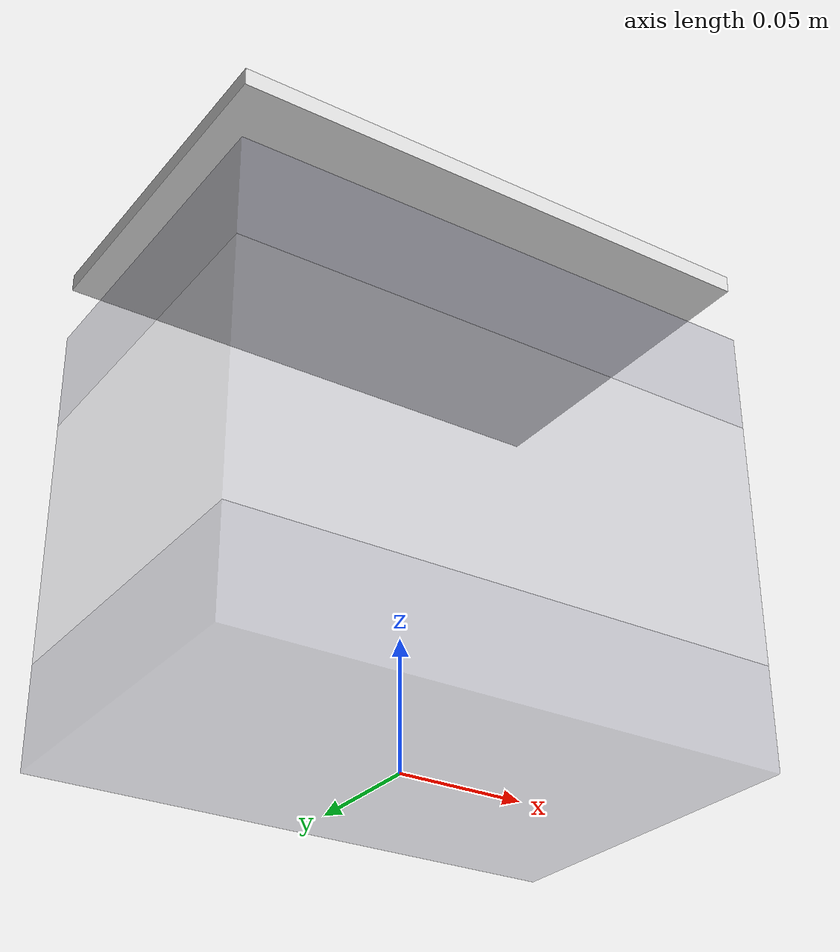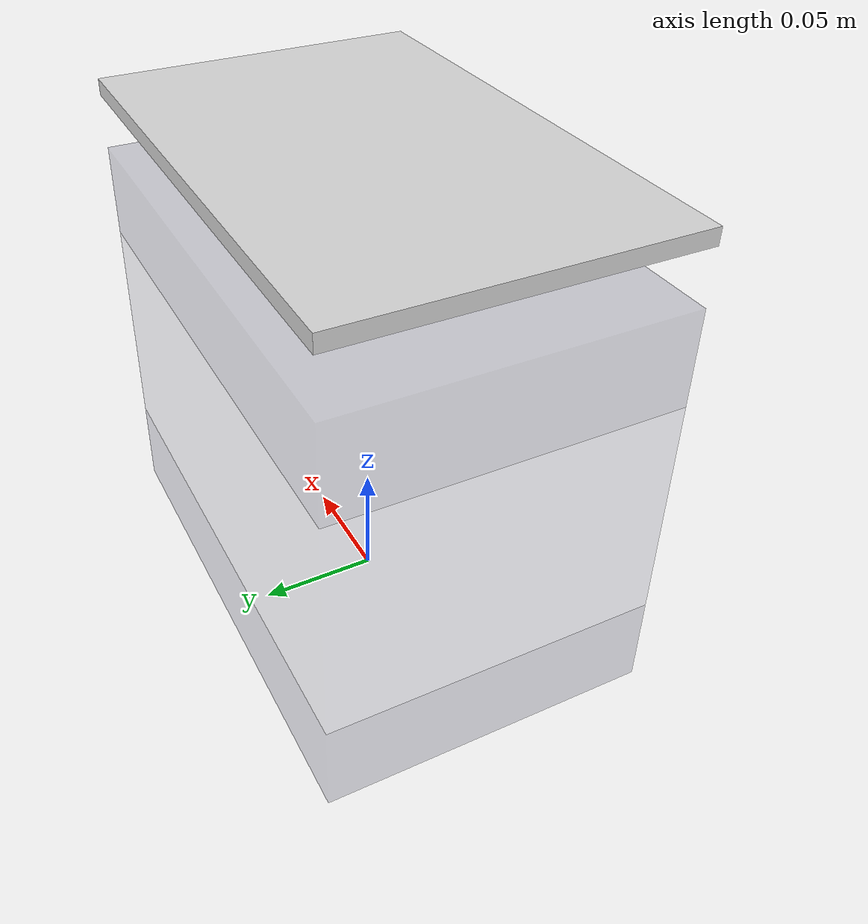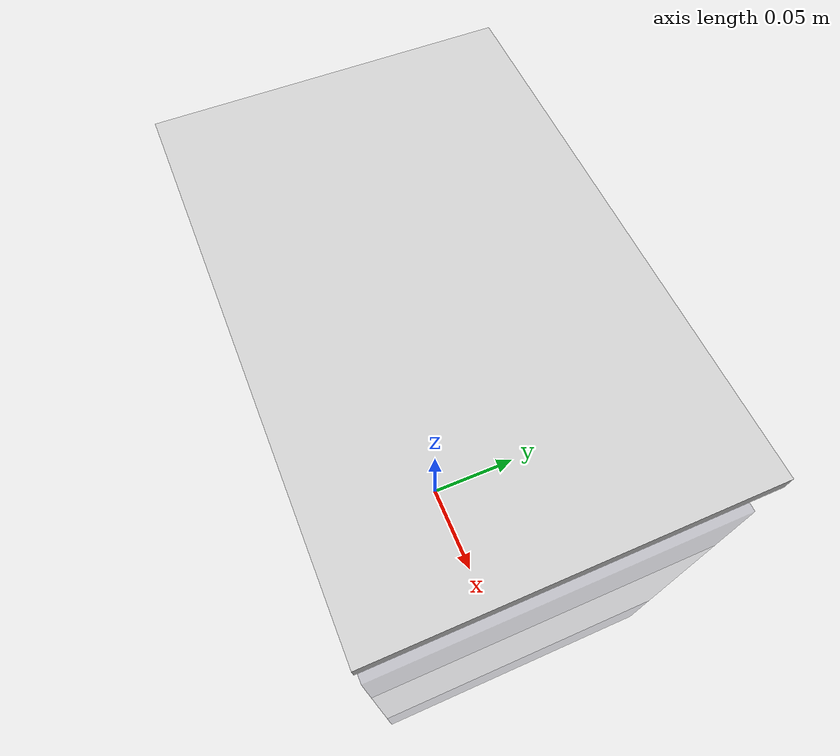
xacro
<?xml version="1.0"?>
<robot xmlns:xacro="http://www.ros.org/wiki/xacro" name="bench_fixture">

  <xacro:include filename="$(find slam_bringup)/urdf/sensors_common.urdf.xacro"/>

  <!-- Footprint at table contact. -->
  <link name="base_link">
    <visual>
      <!-- Lower 2040 rail: Z = 0 .. 40 mm -->
      <origin xyz="0 0 ${extrusion_2040_height/2}" rpy="0 0 0"/>
      <geometry>
        <box size="0.2159 0.1397 ${extrusion_2040_height}"/>
      </geometry>
      <material name="extrusion_2040">
        <color rgba="0.4 0.4 0.5 0.3"/>
      </material>
    </visual>
    <visual>
      <!-- 2020 cavity: Z = 40 .. 137.683 mm (Jetson + USB hub live here) -->
      <origin xyz="0 0 ${extrusion_2040_height + jetson_cavity_height/2}" rpy="0 0 0"/>
      <geometry>
        <box size="0.2159 0.1397 ${jetson_cavity_height}"/>
      </geometry>
      <material name="extrusion_2020">
        <color rgba="0.4 0.4 0.5 0.15"/>
      </material>
    </visual>
    <visual>
      <!-- Upper 2040 (lidar cage): Z = 137.683 .. 177.683 mm -->
      <origin xyz="0 0 ${extrusion_2040_height + jetson_cavity_height + extrusion_2040_height/2}" rpy="0 0 0"/>
      <geometry>
        <box size="0.2159 0.1397 ${extrusion_2040_height}"/>
      </geometry>
      <material name="extrusion_2040"/>
    </visual>
  </link>

  <joint name="base_link_to_sensor_plate" type="fixed">
    <parent link="base_link"/>
    <child  link="sensor_plate"/>
    <origin xyz="0 0 ${base_link_to_plate_top}" rpy="0 0 0"/>
  </joint>

</robot>

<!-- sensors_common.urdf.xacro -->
<robot xmlns:xacro="http://www.ros.org/wiki/xacro" name="sensor_rig">

  <xacro:property name="plate_thickness"        value="0.007"/>      <!-- 7 mm ASA -->
  <xacro:property name="rubber_compressed"      value="0.022987"/>
  <xacro:property name="extrusion_2040_height"  value="0.040"/>      <!-- 40 mm vertical face -->
  <xacro:property name="extrusion_2020_height"  value="0.020"/>      <!-- 20 mm vertical face -->
  <xacro:property name="jetson_cavity_height"   value="0.097683"/>   <!-- 2020 post span -->
  <xacro:property name="base_link_to_plate_top" value="0.207670"/>   <!-- 2040 + cavity + 2040 + rubber + plate (8.176 in) -->

  <!-- ============== Sensor offsets (sensor_plate frame) ==============
       sensor_plate origin = top surface of the lidar plate, body
       convention (+X forward / +Y left / +Z up). -->

  <xacro:property name="livox_xyz" value="-0.025 0.0 0.03661"/>
  <xacro:property name="livox_rpy" value="0.0 0.0 0.0"/>

  <xacro:property name="imu_xyz" value="0.060 0.0 0.009"/>
  <xacro:property name="imu_rpy" value="0.0 0.0 0.0"/>

  <xacro:property name="d435_front_xyz" value="0.146761 0.0 -0.028502"/>
  <xacro:property name="d435_front_rpy" value="0.0 0.0 0.0"/>

  <!-- ============== Links + joints ============== -->

  <link name="sensor_plate">
    <!-- Visual: the 5.5" x 8.5" x 7 mm ASA plate, drawn at plate_top = 0.
         Origin shifted -plate_thickness/2 in Z so the visual sits
         BELOW sensor_plate (plate top stays at Z=0). -->
    <visual>
      <origin xyz="0 0 ${-plate_thickness/2}" rpy="0 0 0"/>
      <geometry>
        <box size="0.2159 0.1397 ${plate_thickness}"/>
      </geometry>
      <material name="plate_asa">
        <color rgba="0.85 0.85 0.85 1.0"/>
      </material>
    </visual>
  </link>

  <link name="livox_frame"/>
  <joint name="sensor_plate_to_livox_frame" type="fixed">
    <parent link="sensor_plate"/>
    <child  link="livox_frame"/>
    <origin xyz="${livox_xyz}" rpy="${livox_rpy}"/>
  </joint>

  <link name="imu_link"/>
  <joint name="sensor_plate_to_imu_link" type="fixed">
    <parent link="sensor_plate"/>
    <child  link="imu_link"/>
    <origin xyz="${imu_xyz}" rpy="${imu_rpy}"/>
  </joint>

  <link name="d435_front_link"/>
  <joint name="sensor_plate_to_d435_front_link" type="fixed">
    <parent link="sensor_plate"/>
    <child  link="d435_front_link"/>
    <origin xyz="${d435_front_xyz}" rpy="${d435_front_rpy}"/>
  </joint>

  <!-- d435_rear_link is declared in the platform xacros (Phase 1.10),
       not here, because the rear camera mount is platform-specific. -->

</robot>
